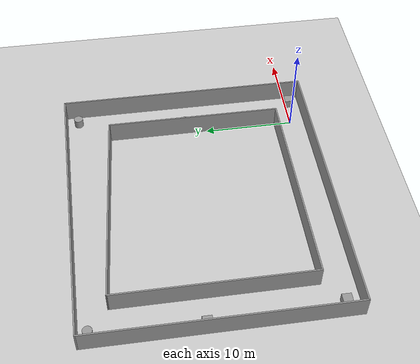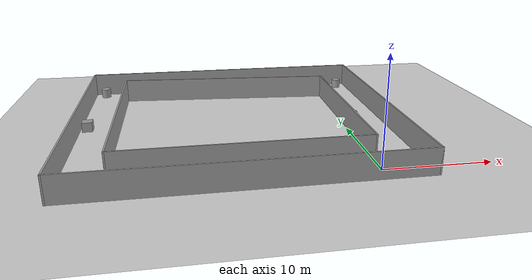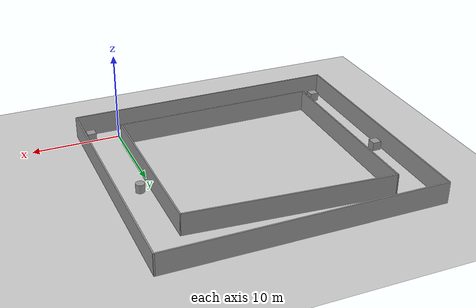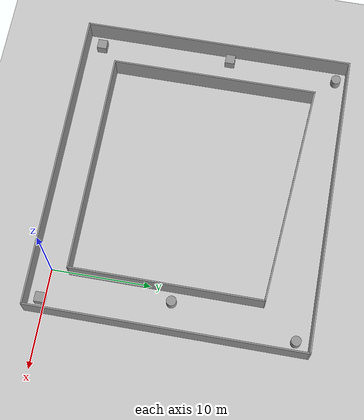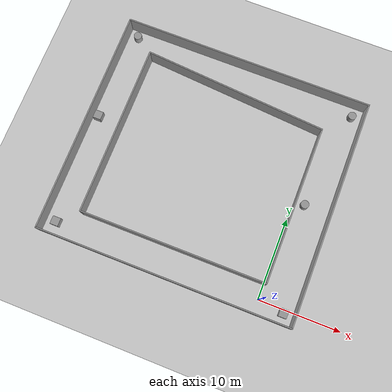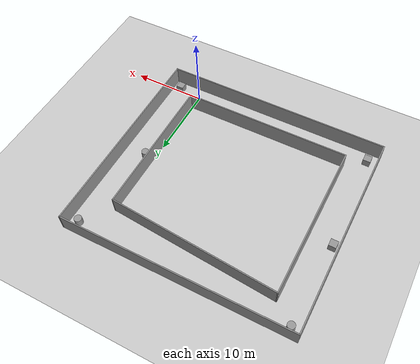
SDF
<sdf version="1.7">
 <world name="default">
  <light name="sun" type="directional">
   <pose>0 0 10 0 -0 0</pose>
   <diffuse>0.8 0.8 0.8 1</diffuse>
   <specular>0.2 0.2 0.2 1</specular>
   <attenuation>
    <range>1000</range>
    <constant>0.9</constant>
    <linear>0.01</linear>
    <quadratic>0.001</quadratic>
   </attenuation>
   <direction>-0.5 0.1 -0.9</direction>
   <spot><inner_angle>0</inner_angle><outer_angle>0</outer_angle><falloff>0</falloff></spot>
  </light>
  <model name="ground_plane">
   <static>1</static>
   <link name="link">
    <collision name="collision">
     <geometry><plane><normal>0 0 1</normal><size>100 100</size></plane></geometry>
     <surface>
      <contact><collide_bitmask>65535</collide_bitmask></contact>
      <friction><ode><mu>100</mu><mu2>50</mu2></ode></friction>
     </surface>
    </collision>
    <visual name="visual">
     <cast_shadows>0</cast_shadows>
     <geometry><plane><normal>0 0 1</normal><size>100 100</size></plane></geometry>
     <material>
      <script><uri>file://media/materials/scripts/gazebo.material</uri><name>Gazebo/Grey</name></script>
     </material>
    </visual>
   </link>
  </model>
  <gravity>0 0 -9.8</gravity>
  <magnetic_field>6e-06 2.3e-05 -4.2e-05</magnetic_field>
  <atmosphere type="adiabatic"/>
  <physics type="ode">
   <max_step_size>0.001</max_step_size>
   <real_time_factor>1</real_time_factor>
   <real_time_update_rate>1000</real_time_update_rate>
  </physics>
  <scene><ambient>0.4 0.4 0.4 1</ambient><background>0.7 0.7 0.7 1</background><shadows>1</shadows></scene>
  <spherical_coordinates>
   <surface_model>EARTH_WGS84</surface_model>
   <latitude_deg>0</latitude_deg>
   <longitude_deg>0</longitude_deg>
   <elevation>0</elevation>
   <heading_deg>0</heading_deg>
  </spherical_coordinates>
  <model name="hallway_loop">
   <pose>-11.1395 12.2341 0 0 -0 0</pose>
   <link name="Wall_0">
    <collision name="Wall_0_Collision">
     <geometry><box><size>28 0.15 2.5</size></box></geometry>
     <pose>0 0 1.25 0 -0 0</pose>
    </collision>
    <visual name="Wall_0_Visual">
     <pose>0 0 1.25 0 -0 0</pose>
     <geometry><box><size>28 0.15 2.5</size></box></geometry>
     <material>
      <script><uri>file://media/materials/scripts/gazebo.material</uri><name>Gazebo/Grey</name></script>
      <ambient>1 1 1 1</ambient>
     </material>
     <meta><layer>0</layer></meta>
    </visual>
    <pose>-15.55 0 0 0 -0 -1.5708</pose>
   </link>
   <link name="Wall_1">
    <collision name="Wall_1_Collision">
     <geometry><box><size>31.25 0.15 2.5</size></box></geometry>
     <pose>0 0 1.25 0 -0 0</pose>
    </collision>
    <visual name="Wall_1_Visual">
     <pose>0 0 1.25 0 -0 0</pose>
     <geometry><box><size>31.25 0.15 2.5</size></box></geometry>
     <material>
      <script><uri>file://media/materials/scripts/gazebo.material</uri><name>Gazebo/Grey</name></script>
      <ambient>1 1 1 1</ambient>
     </material>
     <meta><layer>0</layer></meta>
    </visual>
    <pose>-1e-06 -13.925 0 0 -0 0</pose>
   </link>
   <link name="Wall_2">
    <collision name="Wall_2_Collision">
     <geometry><box><size>28 0.15 2.5</size></box></geometry>
     <pose>0 0 1.25 0 -0 0</pose>
    </collision>
    <visual name="Wall_2_Visual">
     <pose>0 0 1.25 0 -0 0</pose>
     <geometry><box><size>28 0.15 2.5</size></box></geometry>
     <material>
      <script><uri>file://media/materials/scripts/gazebo.material</uri><name>Gazebo/Grey</name></script>
      <ambient>1 1 1 1</ambient>
     </material>
     <meta><layer>0</layer></meta>
    </visual>
    <pose>15.55 0 0 0 -0 1.5708</pose>
   </link>
   <link name="Wall_3">
    <collision name="Wall_3_Collision">
     <geometry><box><size>31.25 0.15 2.5</size></box></geometry>
     <pose>0 0 1.25 0 -0 0</pose>
    </collision>
    <visual name="Wall_3_Visual">
     <pose>0 0 1.25 0 -0 0</pose>
     <geometry><box><size>31.25 0.15 2.5</size></box></geometry>
     <material>
      <script><uri>file://media/materials/scripts/gazebo.material</uri><name>Gazebo/Grey</name></script>
      <ambient>1 1 1 1</ambient>
     </material>
     <meta><layer>0</layer></meta>
    </visual>
    <pose>-1e-06 13.925 0 0 -0 3.14159</pose>
   </link>
   <link name="Wall_5">
    <collision name="Wall_5_Collision">
     <geometry><box><size>21.25 0.15 2.5</size></box></geometry>
     <pose>0 0 1.25 0 -0 0</pose>
    </collision>
    <visual name="Wall_5_Visual">
     <pose>0 0 1.25 0 -0 0</pose>
     <geometry><box><size>21.25 0.15 2.5</size></box></geometry>
     <material>
      <script><uri>file://media/materials/scripts/gazebo.material</uri><name>Gazebo/Grey</name></script>
      <ambient>1 1 1 1</ambient>
     </material>
     <meta><layer>0</layer></meta>
    </visual>
    <pose>-11.5886 0.203897 0 0 -0 -1.5708</pose>
   </link>
   <link name="Wall_6">
    <collision name="Wall_6_Collision">
     <geometry><box><size>23 0.15 2.5</size></box></geometry>
     <pose>0 0 1.25 0 -0 0</pose>
    </collision>
    <visual name="Wall_6_Visual">
     <pose>0 0 1.25 0 -0 0</pose>
     <geometry><box><size>23 0.15 2.5</size></box></geometry>
     <material>
      <script><uri>file://media/materials/scripts/gazebo.material</uri><name>Gazebo/Grey</name></script>
      <ambient>1 1 1 1</ambient>
     </material>
     <meta><layer>0</layer></meta>
    </visual>
    <pose>-0.163566 -10.3461 0 0 -0 0</pose>
   </link>
   <link name="Wall_7">
    <collision name="Wall_7_Collision">
     <geometry><box><size>19.5 0.15 2.5</size></box></geometry>
     <pose>0 0 1.25 0 -0 0</pose>
    </collision>
    <visual name="Wall_7_Visual">
     <pose>0 0 1.25 0 -0 0</pose>
     <geometry><box><size>19.5 0.15 2.5</size></box></geometry>
     <material>
      <script><uri>file://media/materials/scripts/gazebo.material</uri><name>Gazebo/Grey</name></script>
      <ambient>1 1 1 1</ambient>
     </material>
     <meta><layer>0</layer></meta>
    </visual>
    <pose>11.2614 -0.671103 0 0 -0 1.5708</pose>
   </link>
   <link name="Wall_8">
    <collision name="Wall_8_Collision">
     <geometry><box><size>23.0669 0.15 2.5</size></box></geometry>
     <pose>0 0 1.25 0 -0 0</pose>
    </collision>
    <visual name="Wall_8_Visual">
     <pose>0 0 1.25 0 -0 0</pose>
     <geometry><box><size>23.0669 0.15 2.5</size></box></geometry>
     <material>
      <script><uri>file://media/materials/scripts/gazebo.material</uri><name>Gazebo/Grey</name></script>
      <ambient>1 1 1 1</ambient>
     </material>
     <meta><layer>0</layer></meta>
    </visual>
    <pose>-0.163566 9.8789 0 0 -0 3.06515</pose>
   </link>
   <static>1</static>
  </model>
  <model name="unit_box">
   <pose>3.14093 -0.387879 0.499995 0 1e-05 0</pose>
   <link name="link">
    <inertial>
     <mass>1</mass>
     <inertia>
      <ixx>0.166667</ixx>
      <ixy>0</ixy>
      <ixz>0</ixz>
      <iyy>0.166667</iyy>
      <iyz>0</iyz>
      <izz>0.166667</izz>
     </inertia>
    </inertial>
    <collision name="collision"><geometry><box><size>1 1 1</size></box></geometry></collision>
    <visual name="visual">
     <geometry><box><size>1 1 1</size></box></geometry>
     <material>
      <script><name>Gazebo/Grey</name><uri>file://media/materials/scripts/gazebo.material</uri></script>
     </material>
    </visual>
   </link>
  </model>
  <model name="unit_cylinder">
   <pose>3.11308 24.7766 0.499998 3e-06 -4e-06 0</pose>
   <link name="link">
    <inertial>
     <mass>1</mass>
     <inertia><ixx>0.145833</ixx><ixy>0</ixy><ixz>0</ixz><iyy>0.145833</iyy><iyz>0</iyz><izz>0.125</izz></inertia>
    </inertial>
    <collision name="collision">
     <geometry><cylinder><radius>0.5</radius><length>1</length></cylinder></geometry>
    </collision>
    <visual name="visual">
     <geometry><cylinder><radius>0.5</radius><length>1</length></cylinder></geometry>
     <material>
      <script><name>Gazebo/Grey</name><uri>file://media/materials/scripts/gazebo.material</uri></script>
     </material>
    </visual>
   </link>
  </model>
  <model name="unit_cylinder_0">
   <pose>-25.406 25.0864 0.499992 -3e-06 4e-06 0</pose>
   <link name="link">
    <inertial>
     <mass>1</mass>
     <inertia><ixx>0.145833</ixx><ixy>0</ixy><ixz>0</ixz><iyy>0.145833</iyy><iyz>0</iyz><izz>0.125</izz></inertia>
    </inertial>
    <collision name="collision">
     <geometry><cylinder><radius>0.5</radius><length>1</length></cylinder></geometry>
    </collision>
    <visual name="visual">
     <geometry><cylinder><radius>0.5</radius><length>1</length></cylinder></geometry>
     <material>
      <script><name>Gazebo/Grey</name><uri>file://media/materials/scripts/gazebo.material</uri></script>
     </material>
    </visual>
   </link>
  </model>
  <model name="unit_box_0">
   <pose>-25.3076 -0.135056 0.499995 -1e-05 -0 -0</pose>
   <link name="link">
    <inertial>
     <mass>1</mass>
     <inertia>
      <ixx>0.166667</ixx>
      <ixy>0</ixy>
      <ixz>0</ixz>
      <iyy>0.166667</iyy>
      <iyz>0</iyz>
      <izz>0.166667</izz>
     </inertia>
    </inertial>
    <collision name="collision"><geometry><box><size>1 1 1</size></box></geometry></collision>
    <visual name="visual">
     <geometry><box><size>1 1 1</size></box></geometry>
     <material>
      <script><name>Gazebo/Grey</name><uri>file://media/materials/scripts/gazebo.material</uri></script>
     </material>
    </visual>
   </link>
  </model>
  <model name="unit_cylinder_1">
   <pose>1.30404 12.2964 0.499997 3e-06 3e-06 0</pose>
   <link name="link">
    <inertial>
     <mass>1</mass>
     <inertia><ixx>0.145833</ixx><ixy>0</ixy><ixz>0</ixz><iyy>0.145833</iyy><iyz>0</iyz><izz>0.125</izz></inertia>
    </inertial>
    <collision name="collision">
     <geometry><cylinder><radius>0.5</radius><length>1</length></cylinder></geometry>
    </collision>
    <visual name="visual">
     <geometry><cylinder><radius>0.5</radius><length>1</length></cylinder></geometry>
     <material>
      <script><name>Gazebo/Grey</name><uri>file://media/materials/scripts/gazebo.material</uri></script>
     </material>
    </visual>
   </link>
  </model>
  <model name="unit_box_1">
   <pose>-25.8753 13.6748 0.5 0 -0 0</pose>
   <link name="link">
    <inertial>
     <mass>1</mass>
     <inertia>
      <ixx>0.166667</ixx>
      <ixy>0</ixy>
      <ixz>0</ixz>
      <iyy>0.166667</iyy>
      <iyz>0</iyz>
      <izz>0.166667</izz>
     </inertia>
    </inertial>
    <collision name="collision"><geometry><box><size>1 1 1</size></box></geometry></collision>
    <visual name="visual">
     <geometry><box><size>1 1 1</size></box></geometry>
     <material>
      <script><name>Gazebo/Grey</name><uri>file://media/materials/scripts/gazebo.material</uri></script>
     </material>
    </visual>
   </link>
  </model>
 </world>
</sdf>
